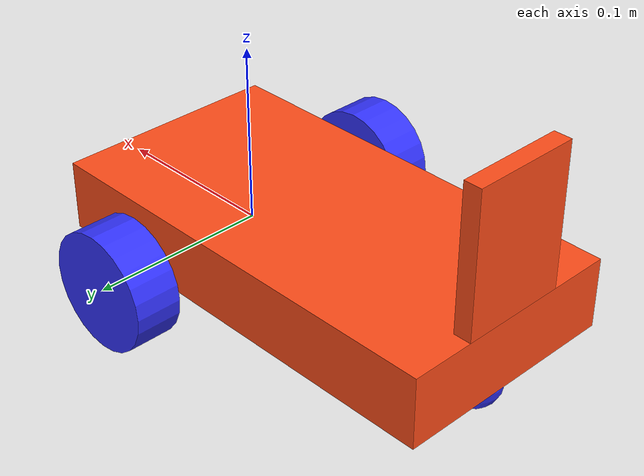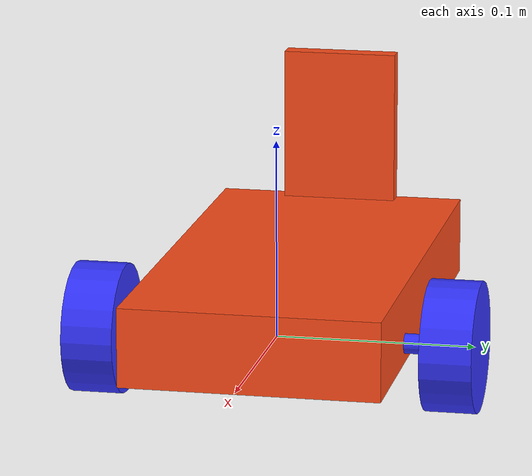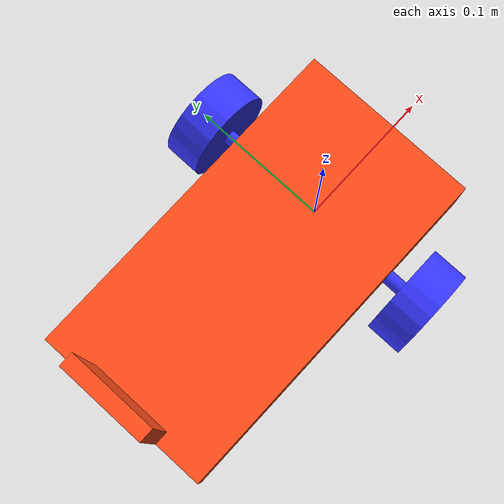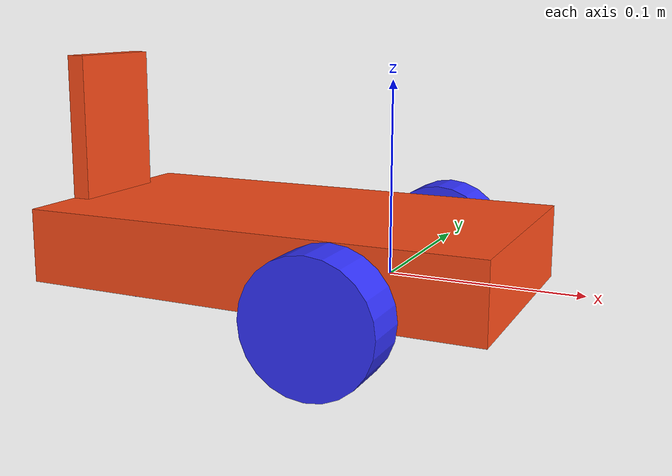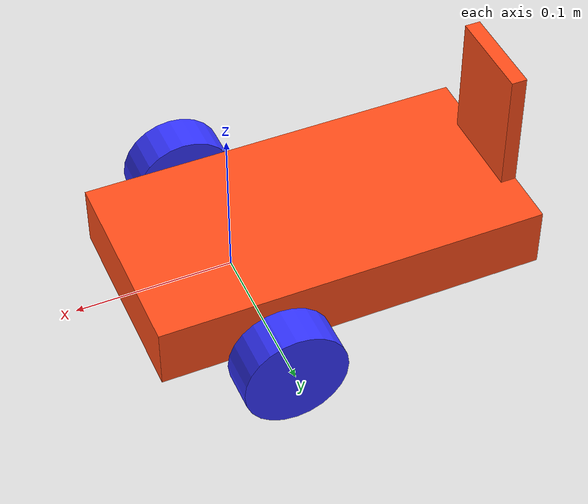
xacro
<?xml version="1.0"?>
<robot xmlns:xacro="http://www.ros.org/wiki/xacro" >

    <xacro:include filename="inertial_macros.xacro"/>

    <xacro:property name="chassis_length" value="0.25"/>
    <xacro:property name="chassis_width" value="0.130"/>
    <xacro:property name="chassis_height" value="0.04"/>
    <xacro:property name="chassis_mass" value="1.0"/>
    <xacro:property name="wheel_radius" value="0.033"/>
    <xacro:property name="wheel_thickness" value="0.026"/>
    <xacro:property name="wheel_mass" value="0.05"/>
    <xacro:property name="wheel_offset_x" value="0.18"/>
    <xacro:property name="wheel_offset_y" value="0.09"/>
    <xacro:property name="wheel_offset_z" value="0.01"/>
    <xacro:property name="caster_wheel_radius" value="0.015"/>
    <xacro:property name="caster_wheel_mass" value="0.01"/>
    <xacro:property name="caster_wheel_offset_x" value="0.02"/>
    <xacro:property name="caster_wheel_offset_z" value="${wheel_offset_z - wheel_radius + caster_wheel_radius}"/>

    <material name="white">
        <color rgba="1 1 1 1" />
    </material>

    <material name="orange">
        <color rgba="1 0.3 0.1 1"/>
    </material>

    <material name="blue">
        <color rgba="0.2 0.2 1 1"/>
    </material>

    <material name="black">
        <color rgba="0 0 0 1"/>
    </material>

    <material name="red">
        <color rgba="1 0 0 1"/>
    </material>

    <material name="yellow">
        <color rgba="1 1 0 1"/>
    </material>

    <material name="green">
        <color rgba="0 1 0 1"/>
    </material>

    <material name="grey">
        <color rgba="0.2 0.2 0.2 1.0"/>
    </material>

    <material name="brown">
        <color rgba="${222/255} ${207/255} ${195/255} 1.0"/>
    </material>

    <!-- BASE LINK -->

    <link name="base_link">

    </link>

    <!-- BASE_FOOTPRINT LINK -->

    <joint name="base_footprint_joint" type="fixed">
        <parent link="base_link"/>
        <child link="base_footprint"/>
        <origin xyz="0 0 0" rpy="0 0 0"/>
    </joint>

    <link name="base_footprint">
    </link>

    <!-- CHASSIS LINK -->

    <joint name="chassis_joint" type="fixed">
        <parent link="base_link"/>
        <child link="chassis"/>
        <origin xyz="${-wheel_offset_x} 0 ${-wheel_offset_z}"/>
    </joint>

    <link name="chassis">
        <visual>
            <origin xyz="${chassis_length/2} 0 ${chassis_height/2}"/>
            <geometry>
                <box size="${chassis_length} ${chassis_width} ${chassis_height}"/>
            </geometry>
            <material name="orange"/>
        </visual>
        <collision>
            <origin xyz="${chassis_length/2} 0 ${chassis_height/2}"/>
            <geometry>
                <box size="${chassis_length} ${chassis_width} ${chassis_height}"/>
            </geometry>
        </collision>
        <xacro:inertial_box mass="2.0" x="${chassis_length}" y="${chassis_width}" z="${chassis_height}">
            <origin xyz="${chassis_length/2} 0 ${chassis_height/2}" rpy="0 0 0"/>
        </xacro:inertial_box>
    </link>

    <gazebo reference="chassis">
        <material>Gazebo/Orange</material>
    </gazebo>

    <!-- LEFT WHEEL LINK -->

    <joint name="left_wheel_joint" type="continuous">
        <parent link="base_link"/>
        <child link="left_wheel"/>
        <origin xyz="0 ${wheel_offset_y} 0" rpy="-${pi/2} 0 0" />
        <axis xyz="0 0 1"/>
    </joint>

    <link name="left_wheel">
        <visual>
            <geometry>
                <cylinder radius="${wheel_radius}" length="${wheel_thickness}"/>
            </geometry>
            <material name="blue"/>
        </visual>
        <visual>
            <origin xyz="0 0 ${-wheel_thickness/2}" rpy="0 0 0"/>
            <geometry>
                <cylinder radius="0.005" length="0.03"/>
            </geometry>
            <material name="blue"/>
        </visual>
        <collision>
            <geometry>
                <sphere radius="${wheel_radius}"/>
            </geometry>
        </collision>
        <xacro:inertial_cylinder mass="${wheel_mass}" length="${wheel_thickness}" radius="${wheel_radius}">
            <origin xyz="0 0 0" rpy="0 0 0"/>
        </xacro:inertial_cylinder>
    </link>

    <gazebo reference="left_wheel">
        <material>Gazebo/Blue</material>
    </gazebo>

    <!-- RIGHT WHEEL LINK -->

    <joint name="right_wheel_joint" type="continuous">
        <parent link="base_link"/>
        <child link="right_wheel"/>
        <origin xyz="0 ${-wheel_offset_y} 0" rpy="${pi/2} 0 0" />
        <axis xyz="0 0 -1"/>
    </joint>

    <link name="right_wheel">
        <visual>
            <geometry>
                <cylinder radius="${wheel_radius}" length="${wheel_thickness}"/>
            </geometry>
            <material name="blue"/>
        </visual>
        <visual>
            <origin xyz="0 0 ${-wheel_thickness/2}" rpy="0 0 0"/>
            <geometry>
                <cylinder radius="0.005" length="0.03"/>
            </geometry>
            <material name="blue"/>
        </visual>
        <collision>
            <geometry>
                <sphere radius="${wheel_radius}"/>
            </geometry>
        </collision>
        <xacro:inertial_cylinder mass="${wheel_mass}" length="${wheel_thickness}" radius="${wheel_radius}">
            <origin xyz="0 0 0" rpy="0 0 0"/>
        </xacro:inertial_cylinder>
    </link>

    <gazebo reference="right_wheel">
        <material>Gazebo/Blue</material>
    </gazebo>

    <!-- CASTER WHEEL LINK -->

    <joint name="caster_wheel_joint" type="fixed">
        <parent link="chassis"/>
        <child link="caster_wheel"/>
        <origin xyz="${caster_wheel_offset_x} 0 ${caster_wheel_offset_z}"/>
    </joint>

    <link name="caster_wheel">
        <visual>
            <geometry>
                <sphere radius="${caster_wheel_radius}"/>
            </geometry>
            <material name="blue"/>
        </visual>
        <collision>
            <geometry>
                <sphere radius="${caster_wheel_radius}"/>
            </geometry>
        </collision>
        <xacro:inertial_sphere mass="${caster_wheel_mass}" radius="${caster_wheel_radius}">
            <origin xyz="0 0 0" rpy="0 0 0"/>
        </xacro:inertial_sphere>
    </link>

    <gazebo reference="caster_wheel">
        <material>Gazebo/Blue</material>
        <mu1 value="0.001"/>
        <mu2 value="0.001"/>
    </gazebo>

    <!-- RaspPi4 -->

    <joint name="raspi_joint" type="fixed">
        <parent link="chassis"/>
        <child link="raspi"/>
        <origin xyz="0.01 -0.03 0.04" rpy="0 -${pi/2} 0"/>
    </joint>

    <link name="raspi">
        <visual>
            <origin xyz="0.04 0.03 0.005"/>
            <geometry>
                <box size="0.08 0.06 0.01"/>
            </geometry>
            <material name="orange"/>
        </visual>
        <collision>
            <origin xyz="0.04 0.03 0.005"/>
            <geometry>
                <box size="0.08 0.06 0.01"/>
            </geometry>
        </collision>
        <xacro:inertial_box mass="0.05" x="0.08" y="0.06" z="0.01">
            <origin xyz="0.04 0.03 0.005" rpy="0 0 0"/>
        </xacro:inertial_box>
    </link>

    <gazebo reference="raspi">
        <material>Gazebo/Orange</material>
    </gazebo>

</robot>
